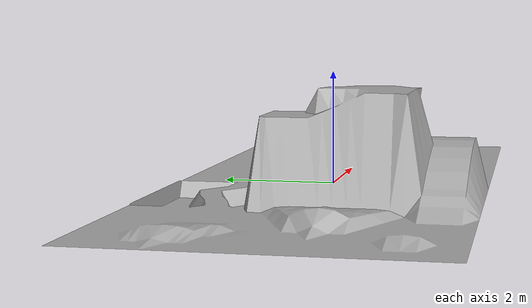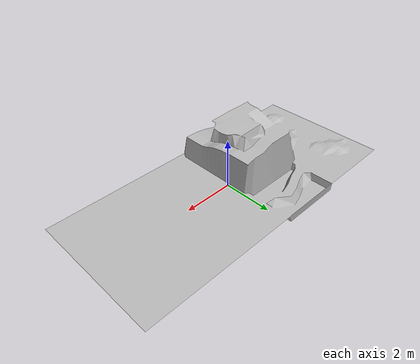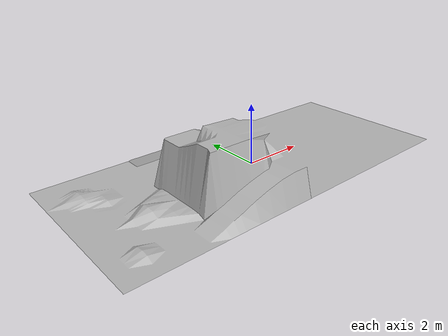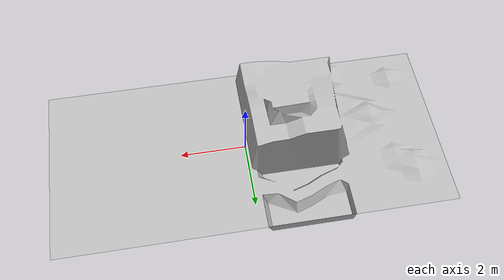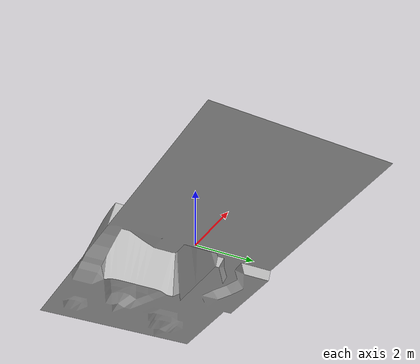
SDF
<?xml version="1.0"?>
<sdf version="1.4">
  <model name="full_town">
    <static>true</static>
    <link name="link">
      <collision name="collision">
        <pose>0 0 0 0 0 -1.57</pose>
        <geometry>
          <mesh>
            <uri>model://full_town/meshes/Terrain_2023_v2.dae</uri>
            <scale>12.0 12.0 12.0</scale>
            <normal>0 0 1</normal>
          </mesh>
        </geometry>
        <surface>
          <friction>
            <ode>
              <mu>100</mu>
              <mu2>100</mu2>
            </ode>
          </friction>
        </surface>
      </collision>
      <visual name="visual">
        <pose>0 0 0 0 0 -1.57</pose>
        <cast_shadows>false</cast_shadows>
        <geometry>
          <mesh>
            <uri>model://full_town/meshes/Terrain_2023_v2.dae</uri>
            <scale>12.0 12.0 12.0</scale>
            <normal>0 0 1</normal>
          </mesh>
        </geometry>
        <material>
          <script>
            <uri>model://full_town/materials/scripts</uri>
            <uri>model://full_town/materials/textures</uri>
            <name>full_town</name>
          </script>
        </material>
      </visual>
    </link>
  </model>
</sdf>
